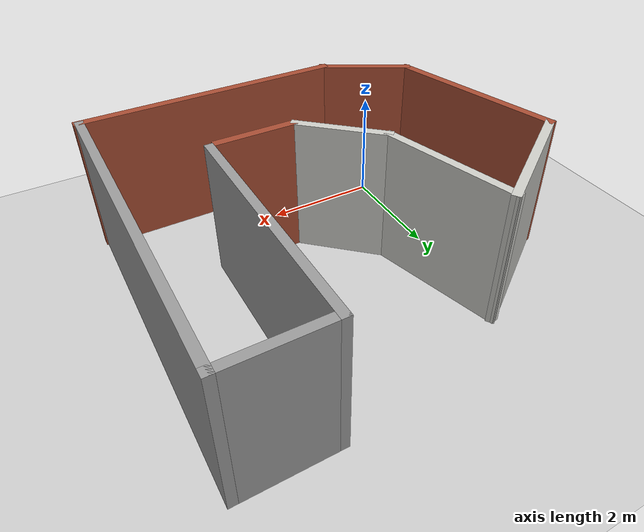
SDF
<sdf version="1.6">
 <world name="default">
  <light name="sun" type="directional">
   <pose>0 0 10 0 -0 0</pose>
   <diffuse>0.8 0.8 0.8 1</diffuse>
   <specular>0.2 0.2 0.2 1</specular>
   <attenuation>
    <range>1000</range>
    <constant>0.9</constant>
    <linear>0.01</linear>
    <quadratic>0.001</quadratic>
   </attenuation>
   <direction>-0.5 0.1 -0.9</direction>
  </light>
  <model name="ground_plane">
   <static>1</static>
   <link name="link">
    <collision name="collision">
     <geometry><plane><normal>0 0 1</normal><size>100 100</size></plane></geometry>
     <surface>
      <contact><collide_bitmask>65535</collide_bitmask></contact>
      <friction><ode><mu>100</mu><mu2>50</mu2></ode></friction>
     </surface>
    </collision>
    <visual name="visual">
     <cast_shadows>0</cast_shadows>
     <geometry><plane><normal>0 0 1</normal><size>100 100</size></plane></geometry>
     <material>
      <script><uri>file://media/materials/scripts/gazebo.material</uri><name>Gazebo/Grey</name></script>
     </material>
    </visual>
   </link>
  </model>
  <gravity>0 0 -9.8</gravity>
  <magnetic_field>6e-06 2.3e-05 -4.2e-05</magnetic_field>
  <atmosphere type="adiabatic"/>
  <physics name="default_physics" default="0" type="ode">
   <max_step_size>0.001</max_step_size>
   <real_time_factor>1</real_time_factor>
   <real_time_update_rate>1000</real_time_update_rate>
  </physics>
  <scene><ambient>0.4 0.4 0.4 1</ambient><background>0.7 0.7 0.7 1</background><shadows>1</shadows></scene>
  <spherical_coordinates>
   <surface_model>EARTH_WGS84</surface_model>
   <latitude_deg>0</latitude_deg>
   <longitude_deg>0</longitude_deg>
   <elevation>0</elevation>
   <heading_deg>0</heading_deg>
  </spherical_coordinates>
  <model name="irregular-building">
   <pose>1.66303 2.10141 0 0 -0 0</pose>
   <link name="Wall_0">
    <collision name="Wall_0_Collision">
     <geometry><box><size>4.75 0.15 2.5</size></box></geometry>
     <pose>0 0 1.25 0 -0 0</pose>
    </collision>
    <visual name="Wall_0_Visual">
     <pose>0 0 1.25 0 -0 0</pose>
     <geometry><box><size>4.75 0.15 2.5</size></box></geometry>
     <material>
      <script><uri>file://media/materials/scripts/gazebo.material</uri><name>Gazebo/Bricks</name></script>
      <ambient>1 1 1 1</ambient>
     </material>
     <meta><layer>0</layer></meta>
    </visual>
    <pose>1.10858 -2.92328 0 0 -0 3.14159</pose>
   </link>
   <link name="Wall_1">
    <collision name="Wall_1_Collision">
     <geometry><box><size>1.75 0.15 2.5</size></box></geometry>
     <pose>0 0 1.25 0 -0 0</pose>
    </collision>
    <visual name="Wall_1_Visual">
     <pose>0 0 1.25 0 -0 0</pose>
     <geometry><box><size>1.75 0.15 2.5</size></box></geometry>
     <material>
      <script><uri>file://media/materials/scripts/gazebo.material</uri><name>Gazebo/Bricks</name></script>
      <ambient>1 1 1 1</ambient>
     </material>
     <meta><layer>0</layer></meta>
    </visual>
    <pose>-1.88424 -2.52328 0 0 -0 2.61799</pose>
   </link>
   <link name="Wall_10">
    <collision name="Wall_10_Collision">
     <geometry><box><size>1.75 0.15 2.5</size></box></geometry>
     <pose>0 0 1.25 0 -0 0</pose>
    </collision>
    <visual name="Wall_10_Visual">
     <pose>0 0 1.25 0 -0 0</pose>
     <geometry><box><size>1.75 0.15 2.5</size></box></geometry>
     <material>
      <script><uri>file://media/materials/scripts/gazebo.material</uri><name>Gazebo/Grey</name></script>
      <ambient>1 1 1 1</ambient>
     </material>
     <meta><layer>0</layer></meta>
    </visual>
    <pose>2.58389 2.95073 0 0 -0 0</pose>
   </link>
   <link name="Wall_11">
    <collision name="Wall_11_Collision">
     <geometry><box><size>6 0.15 2.5</size></box></geometry>
     <pose>0 0 1.25 0 -0 0</pose>
    </collision>
    <visual name="Wall_11_Visual">
     <pose>0 0 1.25 0 -0 0</pose>
     <geometry><box><size>6 0.15 2.5</size></box></geometry>
     <material>
      <script><uri>file://media/materials/scripts/gazebo.material</uri><name>Gazebo/Grey</name></script>
      <ambient>1 1 1 1</ambient>
     </material>
     <meta><layer>0</layer></meta>
    </visual>
    <pose>3.38389 0.025733 0 0 0 -1.5708</pose>
   </link>
   <link name="Wall_2">
    <collision name="Wall_2_Collision">
     <geometry><box><size>3.25 0.15 2.5</size></box></geometry>
     <pose>0 0 1.25 0 -0 0</pose>
    </collision>
    <visual name="Wall_2_Visual">
     <pose>0 0 1.25 0 -0 0</pose>
     <geometry><box><size>3.25 0.15 2.5</size></box></geometry>
     <material>
      <script><uri>file://media/materials/scripts/gazebo.material</uri><name>Gazebo/Bricks</name></script>
      <ambient>1 1 1 1</ambient>
     </material>
     <meta><layer>0</layer></meta>
    </visual>
    <pose>-2.97823 -0.626096 0 0 -0 1.8326</pose>
   </link>
   <link name="Wall_3">
    <collision name="Wall_3_Collision">
     <geometry><box><size>2.46204 0.15 2.5</size></box></geometry>
     <pose>0 0 1.25 0 -0 0</pose>
    </collision>
    <visual name="Wall_3_Visual">
     <pose>0 0 1.25 0 -0 0</pose>
     <geometry><box><size>2.46204 0.15 2.5</size></box></geometry>
     <material>
      <script><uri>file://media/materials/scripts/gazebo.material</uri><name>Gazebo/CeilingTiled</name></script>
      <ambient>1 1 1 1</ambient>
     </material>
     <meta><layer>0</layer></meta>
    </visual>
    <pose>-2.42298 1.52042 0 0 -0 0.596431</pose>
   </link>
   <link name="Wall_4">
    <collision name="Wall_4_Collision">
     <geometry><box><size>2.5 0.15 2.5</size></box></geometry>
     <pose>0 0 1.25 0 -0 0</pose>
    </collision>
    <visual name="Wall_4_Visual">
     <pose>0 0 1.25 0 -0 0</pose>
     <geometry><box><size>2.5 0.15 2.5</size></box></geometry>
     <material>
      <script><uri>file://media/materials/scripts/gazebo.material</uri><name>Gazebo/CeilingTiled</name></script>
      <ambient>1 1 1 1</ambient>
     </material>
     <meta><layer>0</layer></meta>
    </visual>
    <pose>-1.16822 1.03478 0 0 0 -1.309</pose>
   </link>
   <link name="Wall_6">
    <collision name="Wall_6_Collision">
     <geometry><box><size>1.71831 0.15 2.5</size></box></geometry>
     <pose>0 0 1.25 0 -0 0</pose>
    </collision>
    <visual name="Wall_6_Visual">
     <pose>0 0 1.25 0 -0 0</pose>
     <geometry><box><size>1.71831 0.15 2.5</size></box></geometry>
     <material>
      <script><uri>file://media/materials/scripts/gazebo.material</uri><name>Gazebo/CeilingTiled</name></script>
      <ambient>1 1 1 1</ambient>
     </material>
     <meta><layer>0</layer></meta>
    </visual>
    <pose>-0.2805 -0.649429 0 0 0 -0.750715</pose>
   </link>
   <link name="Wall_7">
    <collision name="Wall_7_Collision">
     <geometry><box><size>1.5 0.15 2.5</size></box></geometry>
     <pose>0 0 1.25 0 -0 0</pose>
    </collision>
    <visual name="Wall_7_Visual">
     <pose>0 0 1.25 0 -0 0</pose>
     <geometry><box><size>1.5 0.15 2.5</size></box></geometry>
     <material>
      <script><uri>file://media/materials/scripts/gazebo.material</uri><name>Gazebo/Bricks</name></script>
      <ambient>1 1 1 1</ambient>
     </material>
     <meta><layer>0</layer></meta>
    </visual>
    <pose>0.967876 -1.19973 0 0 -0 0</pose>
   </link>
   <link name="Wall_9">
    <collision name="Wall_9_Collision">
     <geometry><box><size>4.25 0.15 2.5</size></box></geometry>
     <pose>0 0 1.25 0 -0 0</pose>
    </collision>
    <visual name="Wall_9_Visual">
     <pose>0 0 1.25 0 -0 0</pose>
     <geometry><box><size>4.25 0.15 2.5</size></box></geometry>
     <material>
      <script><uri>file://media/materials/scripts/gazebo.material</uri><name>Gazebo/Grey</name></script>
      <ambient>1 1 1 1</ambient>
     </material>
     <meta><layer>0</layer></meta>
    </visual>
    <pose>1.78389 0.900733 0 0 -0 1.5708</pose>
   </link>
   <static>1</static>
  </model>
 </world>
</sdf>
